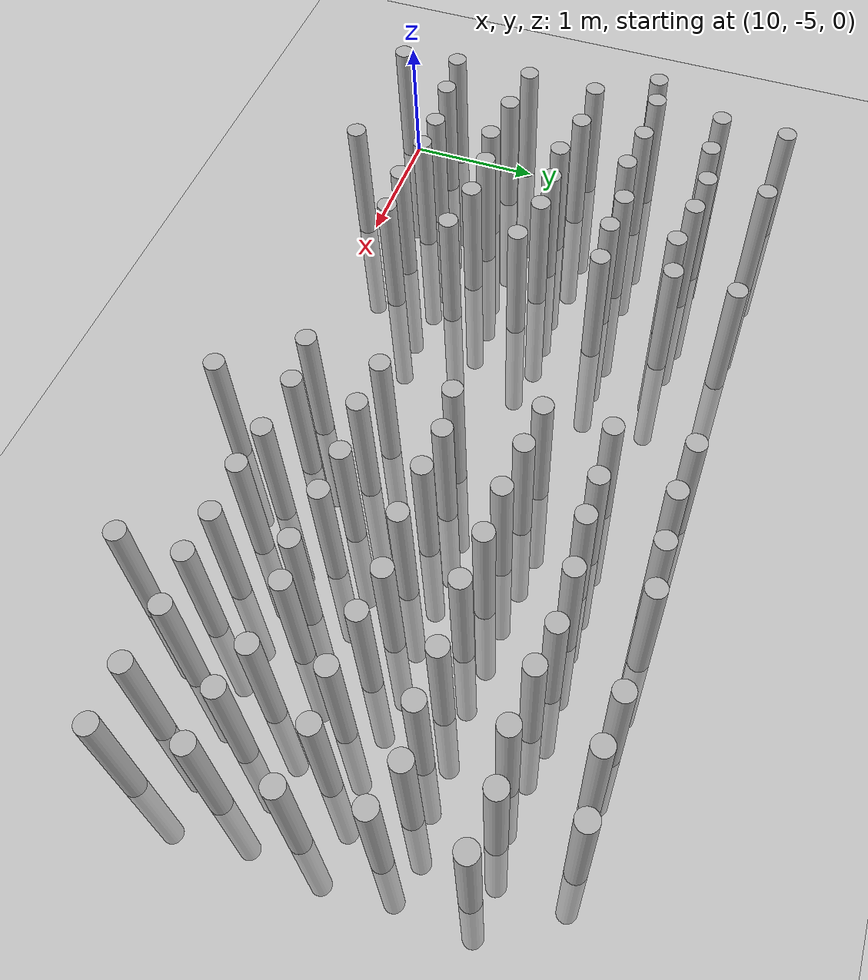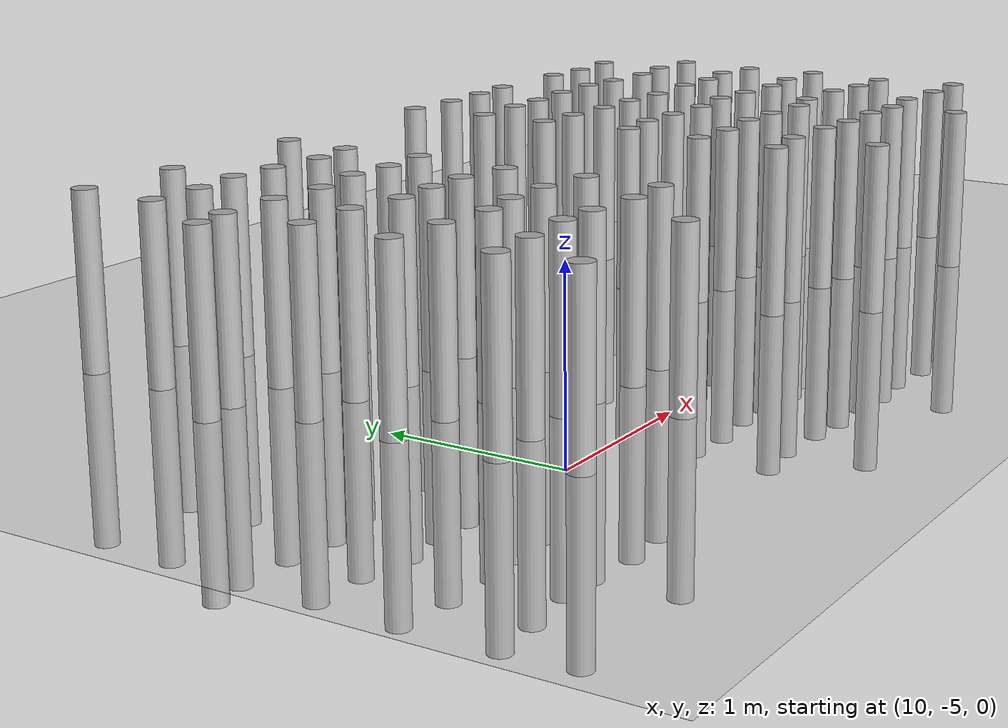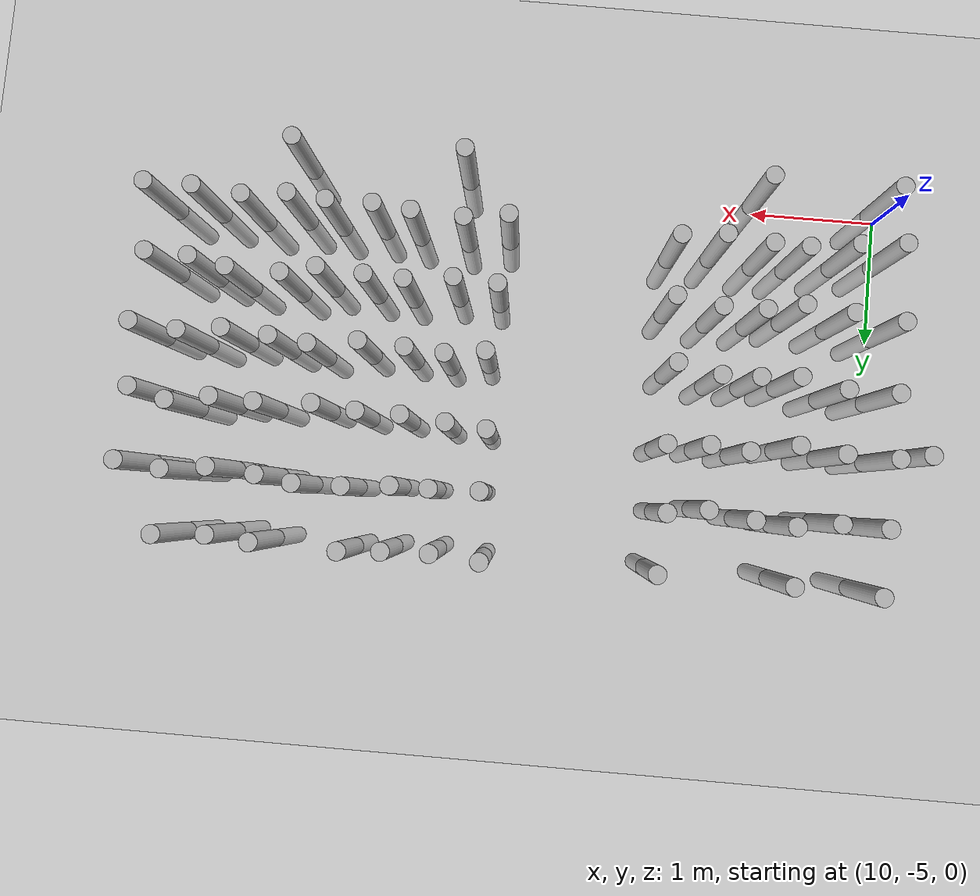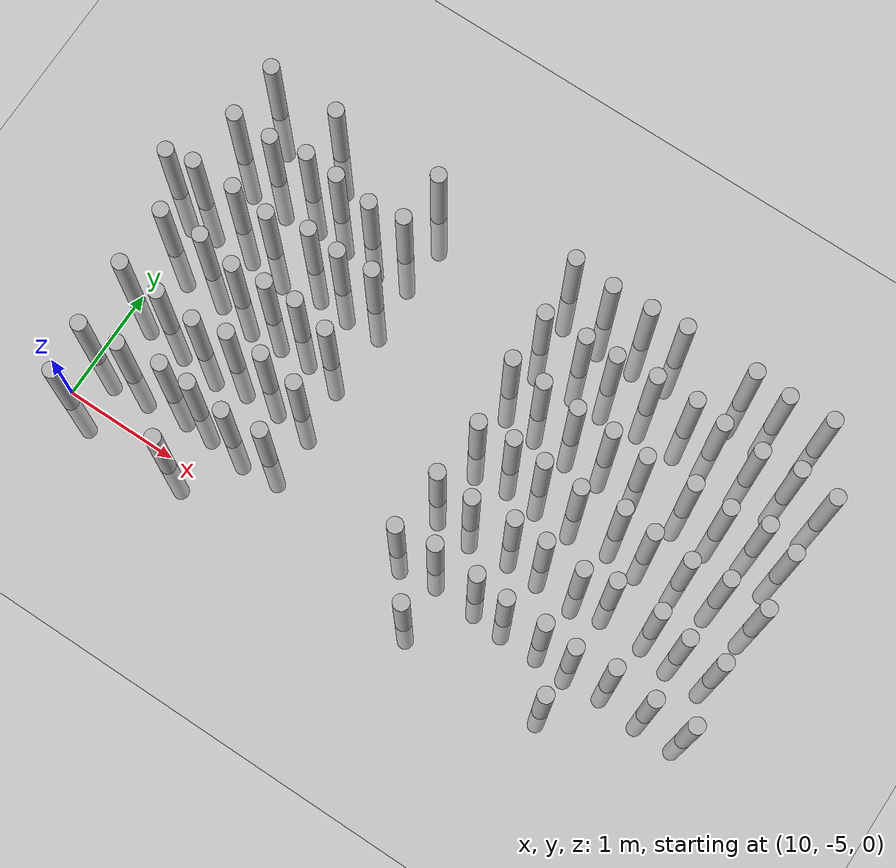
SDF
<sdf version="1.7">
 <world name="farmland_world">
  <model name="ground_plane">
   <static>1</static>
   <link name="link">
    <collision name="collision">
     <geometry><plane><normal>0 0 1</normal><size>40.0 40.0</size></plane></geometry>
     <surface><friction><ode><mu>100</mu><mu2>50</mu2></ode></friction></surface>
    </collision>
    <visual name="visual">
     <cast_shadows>0</cast_shadows>
     <geometry><plane><normal>0 0 1</normal><size>40.0 40.0</size></plane></geometry>
     <material>
      <script><uri>file://media/materials/scripts/gazebo.material</uri><name>Gazebo/Grey</name></script>
     </material>
    </visual>
   </link>
  </model>
  <model name="tree_3_422">
   <static>1</static>
   <link name="link">
    <collision name="collision">
     <geometry><cylinder><radius>0.07</radius><length>2.0</length></cylinder></geometry>
     <surface><friction><ode><mu>100</mu><mu2>50</mu2></ode></friction></surface>
    </collision>
    <visual name="visual">
     <geometry><cylinder><radius>0.07</radius><length>2.0</length></cylinder></geometry>
    </visual>
   </link>
   <pose>9.717080359137375 -3.070453854320626 0 0 0 0</pose>
  </model>
  <model name="tree_3_450">
   <static>1</static>
   <link name="link">
    <collision name="collision">
     <geometry><cylinder><radius>0.07</radius><length>2.0</length></cylinder></geometry>
     <surface><friction><ode><mu>100</mu><mu2>50</mu2></ode></friction></surface>
    </collision>
    <visual name="visual">
     <geometry><cylinder><radius>0.07</radius><length>2.0</length></cylinder></geometry>
    </visual>
   </link>
   <pose>10.020881235300523 -2.015440573190769 0 0 0 0</pose>
  </model>
  <model name="tree_3_451">
   <static>1</static>
   <link name="link">
    <collision name="collision">
     <geometry><cylinder><radius>0.07</radius><length>2.0</length></cylinder></geometry>
     <surface><friction><ode><mu>100</mu><mu2>50</mu2></ode></friction></surface>
    </collision>
    <visual name="visual">
     <geometry><cylinder><radius>0.07</radius><length>2.0</length></cylinder></geometry>
    </visual>
   </link>
   <pose>9.998273174831413 -2.5115021983478996 0 0 0 0</pose>
  </model>
  <model name="tree_3_452">
   <static>1</static>
   <link name="link">
    <collision name="collision">
     <geometry><cylinder><radius>0.07</radius><length>2.0</length></cylinder></geometry>
     <surface><friction><ode><mu>100</mu><mu2>50</mu2></ode></friction></surface>
    </collision>
    <visual name="visual">
     <geometry><cylinder><radius>0.07</radius><length>2.0</length></cylinder></geometry>
    </visual>
   </link>
   <pose>9.95454674915316 -3.0256129459538177 0 0 0 0</pose>
  </model>
  <model name="tree_3_453">
   <static>1</static>
   <link name="link">
    <collision name="collision">
     <geometry><cylinder><radius>0.07</radius><length>2.0</length></cylinder></geometry>
     <surface><friction><ode><mu>100</mu><mu2>50</mu2></ode></friction></surface>
    </collision>
    <visual name="visual">
     <geometry><cylinder><radius>0.07</radius><length>2.0</length></cylinder></geometry>
    </visual>
   </link>
   <pose>9.978727187777547 -3.5089042168459845 0 0 0 0</pose>
  </model>
  <model name="tree_3_454">
   <static>1</static>
   <link name="link">
    <collision name="collision">
     <geometry><cylinder><radius>0.07</radius><length>2.0</length></cylinder></geometry>
     <surface><friction><ode><mu>100</mu><mu2>50</mu2></ode></friction></surface>
    </collision>
    <visual name="visual">
     <geometry><cylinder><radius>0.07</radius><length>2.0</length></cylinder></geometry>
    </visual>
   </link>
   <pose>9.962861763254484 -4.044706008967935 0 0 0 0</pose>
  </model>
  <model name="tree_3_455">
   <static>1</static>
   <link name="link">
    <collision name="collision">
     <geometry><cylinder><radius>0.07</radius><length>2.0</length></cylinder></geometry>
     <surface><friction><ode><mu>100</mu><mu2>50</mu2></ode></friction></surface>
    </collision>
    <visual name="visual">
     <geometry><cylinder><radius>0.07</radius><length>2.0</length></cylinder></geometry>
    </visual>
   </link>
   <pose>9.98573213306673 -4.633881125845042 0 0 0 0</pose>
  </model>
  <model name="tree_3_456">
   <static>1</static>
   <link name="link">
    <collision name="collision">
     <geometry><cylinder><radius>0.07</radius><length>2.0</length></cylinder></geometry>
     <surface><friction><ode><mu>100</mu><mu2>50</mu2></ode></friction></surface>
    </collision>
    <visual name="visual">
     <geometry><cylinder><radius>0.07</radius><length>2.0</length></cylinder></geometry>
    </visual>
   </link>
   <pose>10.029628580053213 -5.064842120949459 0 0 0 0</pose>
  </model>
  <model name="tree_3_481">
   <static>1</static>
   <link name="link">
    <collision name="collision">
     <geometry><cylinder><radius>0.07</radius><length>2.0</length></cylinder></geometry>
     <surface><friction><ode><mu>100</mu><mu2>50</mu2></ode></friction></surface>
    </collision>
    <visual name="visual">
     <geometry><cylinder><radius>0.07</radius><length>2.0</length></cylinder></geometry>
    </visual>
   </link>
   <pose>10.349892017524366 -2.5162948231861995 0 0 0 0</pose>
  </model>
  <model name="tree_3_482">
   <static>1</static>
   <link name="link">
    <collision name="collision">
     <geometry><cylinder><radius>0.07</radius><length>2.0</length></cylinder></geometry>
     <surface><friction><ode><mu>100</mu><mu2>50</mu2></ode></friction></surface>
    </collision>
    <visual name="visual">
     <geometry><cylinder><radius>0.07</radius><length>2.0</length></cylinder></geometry>
    </visual>
   </link>
   <pose>10.343660362567944 -3.0278049491643686 0 0 0 0</pose>
  </model>
  <model name="tree_3_483">
   <static>1</static>
   <link name="link">
    <collision name="collision">
     <geometry><cylinder><radius>0.07</radius><length>2.0</length></cylinder></geometry>
     <surface><friction><ode><mu>100</mu><mu2>50</mu2></ode></friction></surface>
    </collision>
    <visual name="visual">
     <geometry><cylinder><radius>0.07</radius><length>2.0</length></cylinder></geometry>
    </visual>
   </link>
   <pose>10.361353791829298 -3.5052584122187636 0 0 0 0</pose>
  </model>
  <model name="tree_3_484">
   <static>1</static>
   <link name="link">
    <collision name="collision">
     <geometry><cylinder><radius>0.07</radius><length>2.0</length></cylinder></geometry>
     <surface><friction><ode><mu>100</mu><mu2>50</mu2></ode></friction></surface>
    </collision>
    <visual name="visual">
     <geometry><cylinder><radius>0.07</radius><length>2.0</length></cylinder></geometry>
    </visual>
   </link>
   <pose>10.340791550689085 -4.080622288337927 0 0 0 0</pose>
  </model>
  <model name="tree_3_485">
   <static>1</static>
   <link name="link">
    <collision name="collision">
     <geometry><cylinder><radius>0.07</radius><length>2.0</length></cylinder></geometry>
     <surface><friction><ode><mu>100</mu><mu2>50</mu2></ode></friction></surface>
    </collision>
    <visual name="visual">
     <geometry><cylinder><radius>0.07</radius><length>2.0</length></cylinder></geometry>
    </visual>
   </link>
   <pose>10.325672254703452 -4.5988533850934905 0 0 0 0</pose>
  </model>
  <model name="tree_3_510">
   <static>1</static>
   <link name="link">
    <collision name="collision">
     <geometry><cylinder><radius>0.07</radius><length>2.0</length></cylinder></geometry>
     <surface><friction><ode><mu>100</mu><mu2>50</mu2></ode></friction></surface>
    </collision>
    <visual name="visual">
     <geometry><cylinder><radius>0.07</radius><length>2.0</length></cylinder></geometry>
    </visual>
   </link>
   <pose>10.66874375848975 -2.0363046960579263 0 0 0 0</pose>
  </model>
  <model name="tree_3_511">
   <static>1</static>
   <link name="link">
    <collision name="collision">
     <geometry><cylinder><radius>0.07</radius><length>2.0</length></cylinder></geometry>
     <surface><friction><ode><mu>100</mu><mu2>50</mu2></ode></friction></surface>
    </collision>
    <visual name="visual">
     <geometry><cylinder><radius>0.07</radius><length>2.0</length></cylinder></geometry>
    </visual>
   </link>
   <pose>10.674654643913126 -2.469515326749987 0 0 0 0</pose>
  </model>
  <model name="tree_3_512">
   <static>1</static>
   <link name="link">
    <collision name="collision">
     <geometry><cylinder><radius>0.07</radius><length>2.0</length></cylinder></geometry>
     <surface><friction><ode><mu>100</mu><mu2>50</mu2></ode></friction></surface>
    </collision>
    <visual name="visual">
     <geometry><cylinder><radius>0.07</radius><length>2.0</length></cylinder></geometry>
    </visual>
   </link>
   <pose>10.68927461000479 -3.062622080248594 0 0 0 0</pose>
  </model>
  <model name="tree_3_513">
   <static>1</static>
   <link name="link">
    <collision name="collision">
     <geometry><cylinder><radius>0.07</radius><length>2.0</length></cylinder></geometry>
     <surface><friction><ode><mu>100</mu><mu2>50</mu2></ode></friction></surface>
    </collision>
    <visual name="visual">
     <geometry><cylinder><radius>0.07</radius><length>2.0</length></cylinder></geometry>
    </visual>
   </link>
   <pose>10.709726104242007 -3.5698760653888435 0 0 0 0</pose>
  </model>
  <model name="tree_3_514">
   <static>1</static>
   <link name="link">
    <collision name="collision">
     <geometry><cylinder><radius>0.07</radius><length>2.0</length></cylinder></geometry>
     <surface><friction><ode><mu>100</mu><mu2>50</mu2></ode></friction></surface>
    </collision>
    <visual name="visual">
     <geometry><cylinder><radius>0.07</radius><length>2.0</length></cylinder></geometry>
    </visual>
   </link>
   <pose>10.70632579538246 -4.111328735424262 0 0 0 0</pose>
  </model>
  <model name="tree_3_515">
   <static>1</static>
   <link name="link">
    <collision name="collision">
     <geometry><cylinder><radius>0.07</radius><length>2.0</length></cylinder></geometry>
     <surface><friction><ode><mu>100</mu><mu2>50</mu2></ode></friction></surface>
    </collision>
    <visual name="visual">
     <geometry><cylinder><radius>0.07</radius><length>2.0</length></cylinder></geometry>
    </visual>
   </link>
   <pose>10.704409641406844 -4.548946442942845 0 0 0 0</pose>
  </model>
  <model name="tree_3_541">
   <static>1</static>
   <link name="link">
    <collision name="collision">
     <geometry><cylinder><radius>0.07</radius><length>2.0</length></cylinder></geometry>
     <surface><friction><ode><mu>100</mu><mu2>50</mu2></ode></friction></surface>
    </collision>
    <visual name="visual">
     <geometry><cylinder><radius>0.07</radius><length>2.0</length></cylinder></geometry>
    </visual>
   </link>
   <pose>10.979737095840775 -2.491281266314738 0 0 0 0</pose>
  </model>
  <model name="tree_3_542">
   <static>1</static>
   <link name="link">
    <collision name="collision">
     <geometry><cylinder><radius>0.07</radius><length>2.0</length></cylinder></geometry>
     <surface><friction><ode><mu>100</mu><mu2>50</mu2></ode></friction></surface>
    </collision>
    <visual name="visual">
     <geometry><cylinder><radius>0.07</radius><length>2.0</length></cylinder></geometry>
    </visual>
   </link>
   <pose>11.049780969930945 -2.9894349585426356 0 0 0 0</pose>
  </model>
  <model name="tree_3_543">
   <static>1</static>
   <link name="link">
    <collision name="collision">
     <geometry><cylinder><radius>0.07</radius><length>2.0</length></cylinder></geometry>
     <surface><friction><ode><mu>100</mu><mu2>50</mu2></ode></friction></surface>
    </collision>
    <visual name="visual">
     <geometry><cylinder><radius>0.07</radius><length>2.0</length></cylinder></geometry>
    </visual>
   </link>
   <pose>11.007866608676519 -3.543886954436348 0 0 0 0</pose>
  </model>
  <model name="tree_3_544">
   <static>1</static>
   <link name="link">
    <collision name="collision">
     <geometry><cylinder><radius>0.07</radius><length>2.0</length></cylinder></geometry>
     <surface><friction><ode><mu>100</mu><mu2>50</mu2></ode></friction></surface>
    </collision>
    <visual name="visual">
     <geometry><cylinder><radius>0.07</radius><length>2.0</length></cylinder></geometry>
    </visual>
   </link>
   <pose>10.993957659124032 -4.051926600593174 0 0 0 0</pose>
  </model>
  <model name="tree_3_545">
   <static>1</static>
   <link name="link">
    <collision name="collision">
     <geometry><cylinder><radius>0.07</radius><length>2.0</length></cylinder></geometry>
     <surface><friction><ode><mu>100</mu><mu2>50</mu2></ode></friction></surface>
    </collision>
    <visual name="visual">
     <geometry><cylinder><radius>0.07</radius><length>2.0</length></cylinder></geometry>
    </visual>
   </link>
   <pose>10.973415012357032 -4.555407726337556 0 0 0 0</pose>
  </model>
  <model name="tree_3_546">
   <static>1</static>
   <link name="link">
    <collision name="collision">
     <geometry><cylinder><radius>0.07</radius><length>2.0</length></cylinder></geometry>
     <surface><friction><ode><mu>100</mu><mu2>50</mu2></ode></friction></surface>
    </collision>
    <visual name="visual">
     <geometry><cylinder><radius>0.07</radius><length>2.0</length></cylinder></geometry>
    </visual>
   </link>
   <pose>11.007671961605217 -5.06622406489025 0 0 0 0</pose>
  </model>
  <model name="tree_3_571">
   <static>1</static>
   <link name="link">
    <collision name="collision">
     <geometry><cylinder><radius>0.07</radius><length>2.0</length></cylinder></geometry>
     <surface><friction><ode><mu>100</mu><mu2>50</mu2></ode></friction></surface>
    </collision>
    <visual name="visual">
     <geometry><cylinder><radius>0.07</radius><length>2.0</length></cylinder></geometry>
    </visual>
   </link>
   <pose>11.324796643864374 -2.537446021737154 0 0 0 0</pose>
  </model>
  <model name="tree_3_572">
   <static>1</static>
   <link name="link">
    <collision name="collision">
     <geometry><cylinder><radius>0.07</radius><length>2.0</length></cylinder></geometry>
     <surface><friction><ode><mu>100</mu><mu2>50</mu2></ode></friction></surface>
    </collision>
    <visual name="visual">
     <geometry><cylinder><radius>0.07</radius><length>2.0</length></cylinder></geometry>
    </visual>
   </link>
   <pose>11.343550527425926 -3.013005061129465 0 0 0 0</pose>
  </model>
  <model name="tree_3_573">
   <static>1</static>
   <link name="link">
    <collision name="collision">
     <geometry><cylinder><radius>0.07</radius><length>2.0</length></cylinder></geometry>
     <surface><friction><ode><mu>100</mu><mu2>50</mu2></ode></friction></surface>
    </collision>
    <visual name="visual">
     <geometry><cylinder><radius>0.07</radius><length>2.0</length></cylinder></geometry>
    </visual>
   </link>
   <pose>11.295116834653838 -3.535126341004741 0 0 0 0</pose>
  </model>
  <model name="tree_3_574">
   <static>1</static>
   <link name="link">
    <collision name="collision">
     <geometry><cylinder><radius>0.07</radius><length>2.0</length></cylinder></geometry>
     <surface><friction><ode><mu>100</mu><mu2>50</mu2></ode></friction></surface>
    </collision>
    <visual name="visual">
     <geometry><cylinder><radius>0.07</radius><length>2.0</length></cylinder></geometry>
    </visual>
   </link>
   <pose>11.32085412783135 -4.0472351998851375 0 0 0 0</pose>
  </model>
  <model name="tree_3_575">
   <static>1</static>
   <link name="link">
    <collision name="collision">
     <geometry><cylinder><radius>0.07</radius><length>2.0</length></cylinder></geometry>
     <surface><friction><ode><mu>100</mu><mu2>50</mu2></ode></friction></surface>
    </collision>
    <visual name="visual">
     <geometry><cylinder><radius>0.07</radius><length>2.0</length></cylinder></geometry>
    </visual>
   </link>
   <pose>11.326289432675699 -4.5937818026488575 0 0 0 0</pose>
  </model>
  <model name="tree_3_600">
   <static>1</static>
   <link name="link">
    <collision name="collision">
     <geometry><cylinder><radius>0.07</radius><length>2.0</length></cylinder></geometry>
     <surface><friction><ode><mu>100</mu><mu2>50</mu2></ode></friction></surface>
    </collision>
    <visual name="visual">
     <geometry><cylinder><radius>0.07</radius><length>2.0</length></cylinder></geometry>
    </visual>
   </link>
   <pose>11.664897325765985 -2.0405155615173833 0 0 0 0</pose>
  </model>
  <model name="tree_3_601">
   <static>1</static>
   <link name="link">
    <collision name="collision">
     <geometry><cylinder><radius>0.07</radius><length>2.0</length></cylinder></geometry>
     <surface><friction><ode><mu>100</mu><mu2>50</mu2></ode></friction></surface>
    </collision>
    <visual name="visual">
     <geometry><cylinder><radius>0.07</radius><length>2.0</length></cylinder></geometry>
    </visual>
   </link>
   <pose>11.627634994784051 -2.489922066019672 0 0 0 0</pose>
  </model>
  <model name="tree_3_602">
   <static>1</static>
   <link name="link">
    <collision name="collision">
     <geometry><cylinder><radius>0.07</radius><length>2.0</length></cylinder></geometry>
     <surface><friction><ode><mu>100</mu><mu2>50</mu2></ode></friction></surface>
    </collision>
    <visual name="visual">
     <geometry><cylinder><radius>0.07</radius><length>2.0</length></cylinder></geometry>
    </visual>
   </link>
   <pose>11.66218667401628 -2.992871850044101 0 0 0 0</pose>
  </model>
  <model name="tree_3_603">
   <static>1</static>
   <link name="link">
    <collision name="collision">
     <geometry><cylinder><radius>0.07</radius><length>2.0</length></cylinder></geometry>
     <surface><friction><ode><mu>100</mu><mu2>50</mu2></ode></friction></surface>
    </collision>
    <visual name="visual">
     <geometry><cylinder><radius>0.07</radius><length>2.0</length></cylinder></geometry>
    </visual>
   </link>
   <pose>11.626772930223812 -3.5998928023856553 0 0 0 0</pose>
  </model>
  <model name="tree_3_604">
   <static>1</static>
   <link name="link">
    <collision name="collision">
     <geometry><cylinder><radius>0.07</radius><length>2.0</length></cylinder></geometry>
     <surface><friction><ode><mu>100</mu><mu2>50</mu2></ode></friction></surface>
    </collision>
    <visual name="visual">
     <geometry><cylinder><radius>0.07</radius><length>2.0</length></cylinder></geometry>
    </visual>
   </link>
   <pose>11.66985236156707 -4.09705594616118 0 0 0 0</pose>
  </model>
  <model name="tree_3_605">
   <static>1</static>
   <link name="link">
    <collision name="collision">
     <geometry><cylinder><radius>0.07</radius><length>2.0</length></cylinder></geometry>
     <surface><friction><ode><mu>100</mu><mu2>50</mu2></ode></friction></surface>
    </collision>
    <visual name="visual">
     <geometry><cylinder><radius>0.07</radius><length>2.0</length></cylinder></geometry>
    </visual>
   </link>
   <pose>11.666140430878173 -4.559905708303134 0 0 0 0</pose>
  </model>
  <model name="tree_3_630">
   <static>1</static>
   <link name="link">
    <collision name="collision">
     <geometry><cylinder><radius>0.07</radius><length>2.0</length></cylinder></geometry>
     <surface><friction><ode><mu>100</mu><mu2>50</mu2></ode></friction></surface>
    </collision>
    <visual name="visual">
     <geometry><cylinder><radius>0.07</radius><length>2.0</length></cylinder></geometry>
    </visual>
   </link>
   <pose>12.960612645370297 -2.020001596869969 0 0 0 0</pose>
  </model>
  <model name="tree_3_631">
   <static>1</static>
   <link name="link">
    <collision name="collision">
     <geometry><cylinder><radius>0.07</radius><length>2.0</length></cylinder></geometry>
     <surface><friction><ode><mu>100</mu><mu2>50</mu2></ode></friction></surface>
    </collision>
    <visual name="visual">
     <geometry><cylinder><radius>0.07</radius><length>2.0</length></cylinder></geometry>
    </visual>
   </link>
   <pose>13.003158117616708 -2.531564269439165 0 0 0 0</pose>
  </model>
  <model name="tree_3_632">
   <static>1</static>
   <link name="link">
    <collision name="collision">
     <geometry><cylinder><radius>0.07</radius><length>2.0</length></cylinder></geometry>
     <surface><friction><ode><mu>100</mu><mu2>50</mu2></ode></friction></surface>
    </collision>
    <visual name="visual">
     <geometry><cylinder><radius>0.07</radius><length>2.0</length></cylinder></geometry>
    </visual>
   </link>
   <pose>12.993375641554099 -2.9873528097823154 0 0 0 0</pose>
  </model>
  <model name="tree_3_633">
   <static>1</static>
   <link name="link">
    <collision name="collision">
     <geometry><cylinder><radius>0.07</radius><length>2.0</length></cylinder></geometry>
     <surface><friction><ode><mu>100</mu><mu2>50</mu2></ode></friction></surface>
    </collision>
    <visual name="visual">
     <geometry><cylinder><radius>0.07</radius><length>2.0</length></cylinder></geometry>
    </visual>
   </link>
   <pose>13.049970485003149 -3.564685814902997 0 0 0 0</pose>
  </model>
  <model name="tree_3_634">
   <static>1</static>
   <link name="link">
    <collision name="collision">
     <geometry><cylinder><radius>0.07</radius><length>2.0</length></cylinder></geometry>
     <surface><friction><ode><mu>100</mu><mu2>50</mu2></ode></friction></surface>
    </collision>
    <visual name="visual">
     <geometry><cylinder><radius>0.07</radius><length>2.0</length></cylinder></geometry>
    </visual>
   </link>
   <pose>13.004393510239103 -4.075042588408984 0 0 0 0</pose>
  </model>
  <model name="tree_3_635">
   <static>1</static>
   <link name="link">
    <collision name="collision">
     <geometry><cylinder><radius>0.07</radius><length>2.0</length></cylinder></geometry>
     <surface><friction><ode><mu>100</mu><mu2>50</mu2></ode></friction></surface>
    </collision>
    <visual name="visual">
     <geometry><cylinder><radius>0.07</radius><length>2.0</length></cylinder></geometry>
    </visual>
   </link>
   <pose>12.965542090179241 -4.604766656195209 0 0 0 0</pose>
  </model>
  <model name="tree_3_660">
   <static>1</static>
   <link name="link">
    <collision name="collision">
     <geometry><cylinder><radius>0.07</radius><length>2.0</length></cylinder></geometry>
     <surface><friction><ode><mu>100</mu><mu2>50</mu2></ode></friction></surface>
    </collision>
    <visual name="visual">
     <geometry><cylinder><radius>0.07</radius><length>2.0</length></cylinder></geometry>
    </visual>
   </link>
   <pose>13.328774511057324 -2.0490253503559073 0 0 0 0</pose>
  </model>
  <model name="tree_3_661">
   <static>1</static>
   <link name="link">
    <collision name="collision">
     <geometry><cylinder><radius>0.07</radius><length>2.0</length></cylinder></geometry>
     <surface><friction><ode><mu>100</mu><mu2>50</mu2></ode></friction></surface>
    </collision>
    <visual name="visual">
     <geometry><cylinder><radius>0.07</radius><length>2.0</length></cylinder></geometry>
    </visual>
   </link>
   <pose>13.377119618618828 -2.5177155727598244 0 0 0 0</pose>
  </model>
  <model name="tree_3_662">
   <static>1</static>
   <link name="link">
    <collision name="collision">
     <geometry><cylinder><radius>0.07</radius><length>2.0</length></cylinder></geometry>
     <surface><friction><ode><mu>100</mu><mu2>50</mu2></ode></friction></surface>
    </collision>
    <visual name="visual">
     <geometry><cylinder><radius>0.07</radius><length>2.0</length></cylinder></geometry>
    </visual>
   </link>
   <pose>13.298872429895432 -3.0127574798873216 0 0 0 0</pose>
  </model>
  <model name="tree_3_663">
   <static>1</static>
   <link name="link">
    <collision name="collision">
     <geometry><cylinder><radius>0.07</radius><length>2.0</length></cylinder></geometry>
     <surface><friction><ode><mu>100</mu><mu2>50</mu2></ode></friction></surface>
    </collision>
    <visual name="visual">
     <geometry><cylinder><radius>0.07</radius><length>2.0</length></cylinder></geometry>
    </visual>
   </link>
   <pose>13.353031816937946 -3.5222221432086576 0 0 0 0</pose>
  </model>
  <model name="tree_3_664">
   <static>1</static>
   <link name="link">
    <collision name="collision">
     <geometry><cylinder><radius>0.07</radius><length>2.0</length></cylinder></geometry>
     <surface><friction><ode><mu>100</mu><mu2>50</mu2></ode></friction></surface>
    </collision>
    <visual name="visual">
     <geometry><cylinder><radius>0.07</radius><length>2.0</length></cylinder></geometry>
    </visual>
   </link>
   <pose>13.337465787345485 -4.0937416873712795 0 0 0 0</pose>
  </model>
  <model name="tree_3_665">
   <static>1</static>
   <link name="link">
    <collision name="collision">
     <geometry><cylinder><radius>0.07</radius><length>2.0</length></cylinder></geometry>
     <surface><friction><ode><mu>100</mu><mu2>50</mu2></ode></friction></surface>
    </collision>
    <visual name="visual">
     <geometry><cylinder><radius>0.07</radius><length>2.0</length></cylinder></geometry>
    </visual>
   </link>
   <pose>13.302349958882031 -4.554737615776283 0 0 0 0</pose>
  </model>
  <model name="tree_3_666">
   <static>1</static>
   <link name="link">
    <collision name="collision">
     <geometry><cylinder><radius>0.07</radius><length>2.0</length></cylinder></geometry>
     <surface><friction><ode><mu>100</mu><mu2>50</mu2></ode></friction></surface>
    </collision>
    <visual name="visual">
     <geometry><cylinder><radius>0.07</radius><length>2.0</length></cylinder></geometry>
    </visual>
   </link>
   <pose>13.33841103429083 -5.07794579671225 0 0 0 0</pose>
  </model>
  <model name="tree_3_690">
   <static>1</static>
   <link name="link">
    <collision name="collision">
     <geometry><cylinder><radius>0.07</radius><length>2.0</length></cylinder></geometry>
     <surface><friction><ode><mu>100</mu><mu2>50</mu2></ode></friction></surface>
    </collision>
    <visual name="visual">
     <geometry><cylinder><radius>0.07</radius><length>2.0</length></cylinder></geometry>
    </visual>
   </link>
   <pose>13.681525599248896 -2.0346011697346684 0 0 0 0</pose>
  </model>
  <model name="tree_3_691">
   <static>1</static>
   <link name="link">
    <collision name="collision">
     <geometry><cylinder><radius>0.07</radius><length>2.0</length></cylinder></geometry>
     <surface><friction><ode><mu>100</mu><mu2>50</mu2></ode></friction></surface>
    </collision>
    <visual name="visual">
     <geometry><cylinder><radius>0.07</radius><length>2.0</length></cylinder></geometry>
    </visual>
   </link>
   <pose>13.661327469516268 -2.515464992140587 0 0 0 0</pose>
  </model>
  <model name="tree_3_692">
   <static>1</static>
   <link name="link">
    <collision name="collision">
     <geometry><cylinder><radius>0.07</radius><length>2.0</length></cylinder></geometry>
     <surface><friction><ode><mu>100</mu><mu2>50</mu2></ode></friction></surface>
    </collision>
    <visual name="visual">
     <geometry><cylinder><radius>0.07</radius><length>2.0</length></cylinder></geometry>
    </visual>
   </link>
   <pose>13.634424833269183 -3.0413740655983394 0 0 0 0</pose>
  </model>
  <model name="tree_3_693">
   <static>1</static>
   <link name="link">
    <collision name="collision">
     <geometry><cylinder><radius>0.07</radius><length>2.0</length></cylinder></geometry>
     <surface><friction><ode><mu>100</mu><mu2>50</mu2></ode></friction></surface>
    </collision>
    <visual name="visual">
     <geometry><cylinder><radius>0.07</radius><length>2.0</length></cylinder></geometry>
    </visual>
   </link>
   <pose>13.650762402313813 -3.54275371511737 0 0 0 0</pose>
  </model>
  <model name="tree_3_694">
   <static>1</static>
   <link name="link">
    <collision name="collision">
     <geometry><cylinder><radius>0.07</radius><length>2.0</length></cylinder></geometry>
     <surface><friction><ode><mu>100</mu><mu2>50</mu2></ode></friction></surface>
    </collision>
    <visual name="visual">
     <geometry><cylinder><radius>0.07</radius><length>2.0</length></cylinder></geometry>
    </visual>
   </link>
   <pose>13.706018645843812 -4.0508481155113545 0 0 0 0</pose>
  </model>
  <model name="tree_3_695">
   <static>1</static>
   <link name="link">
    <collision name="collision">
     <geometry><cylinder><radius>0.07</radius><length>2.0</length></cylinder></geometry>
     <surface><friction><ode><mu>100</mu><mu2>50</mu2></ode></friction></surface>
    </collision>
    <visual name="visual">
     <geometry><cylinder><radius>0.07</radius><length>2.0</length></cylinder></geometry>
    </visual>
   </link>
   <pose>13.701158590837842 -4.573846500243436 0 0 0 0</pose>
  </model>
  <model name="tree_3_720">
   <static>1</static>
   <link name="link">
    <collision name="collision">
     <geometry><cylinder><radius>0.07</radius><length>2.0</length></cylinder></geometry>
     <surface><friction><ode><mu>100</mu><mu2>50</mu2></ode></friction></surface>
    </collision>
    <visual name="visual">
     <geometry><cylinder><radius>0.07</radius><length>2.0</length></cylinder></geometry>
    </visual>
   </link>
   <pose>13.997588758998843 -2.0099890282519657 0 0 0 0</pose>
  </model>
  <model name="tree_3_721">
   <static>1</static>
   <link name="link">
    <collision name="collision">
     <geometry><cylinder><radius>0.07</radius><length>2.0</length></cylinder></geometry>
     <surface><friction><ode><mu>100</mu><mu2>50</mu2></ode></friction></surface>
    </collision>
    <visual name="visual">
     <geometry><cylinder><radius>0.07</radius><length>2.0</length></cylinder></geometry>
    </visual>
   </link>
   <pose>14.015086598085556 -2.4824299507257583 0 0 0 0</pose>
  </model>
  <model name="tree_3_722">
   <static>1</static>
   <link name="link">
    <collision name="collision">
     <geometry><cylinder><radius>0.07</radius><length>2.0</length></cylinder></geometry>
     <surface><friction><ode><mu>100</mu><mu2>50</mu2></ode></friction></surface>
    </collision>
    <visual name="visual">
     <geometry><cylinder><radius>0.07</radius><length>2.0</length></cylinder></geometry>
    </visual>
   </link>
   <pose>13.96463271150886 -3.0421146747684316 0 0 0 0</pose>
  </model>
  <model name="tree_3_723">
   <static>1</static>
   <link name="link">
    <collision name="collision">
     <geometry><cylinder><radius>0.07</radius><length>2.0</length></cylinder></geometry>
     <surface><friction><ode><mu>100</mu><mu2>50</mu2></ode></friction></surface>
    </collision>
    <visual name="visual">
     <geometry><cylinder><radius>0.07</radius><length>2.0</length></cylinder></geometry>
    </visual>
   </link>
   <pose>13.998221983812822 -3.560359693441759 0 0 0 0</pose>
  </model>
  <model name="tree_3_724">
   <static>1</static>
   <link name="link">
    <collision name="collision">
     <geometry><cylinder><radius>0.07</radius><length>2.0</length></cylinder></geometry>
     <surface><friction><ode><mu>100</mu><mu2>50</mu2></ode></friction></surface>
    </collision>
    <visual name="visual">
     <geometry><cylinder><radius>0.07</radius><length>2.0</length></cylinder></geometry>
    </visual>
   </link>
   <pose>14.004856675073153 -4.061975625905278 0 0 0 0</pose>
  </model>
  <model name="tree_3_725">
   <static>1</static>
   <link name="link">
    <collision name="collision">
     <geometry><cylinder><radius>0.07</radius><length>2.0</length></cylinder></geometry>
     <surface><friction><ode><mu>100</mu><mu2>50</mu2></ode></friction></surface>
    </collision>
    <visual name="visual">
     <geometry><cylinder><radius>0.07</radius><length>2.0</length></cylinder></geometry>
    </visual>
   </link>
   <pose>13.991331234323113 -4.602526824317719 0 0 0 0</pose>
  </model>
  <model name="tree_3_751">
   <static>1</static>
   <link name="link">
    <collision name="collision">
     <geometry><cylinder><radius>0.07</radius><length>2.0</length></cylinder></geometry>
     <surface><friction><ode><mu>100</mu><mu2>50</mu2></ode></friction></surface>
    </collision>
    <visual name="visual">
     <geometry><cylinder><radius>0.07</radius><length>2.0</length></cylinder></geometry>
    </visual>
   </link>
   <pose>14.376362825787275 -2.4738478521506 0 0 0 0</pose>
  </model>
  <model name="tree_3_752">
   <static>1</static>
   <link name="link">
    <collision name="collision">
     <geometry><cylinder><radius>0.07</radius><length>2.0</length></cylinder></geometry>
     <surface><friction><ode><mu>100</mu><mu2>50</mu2></ode></friction></surface>
    </collision>
    <visual name="visual">
     <geometry><cylinder><radius>0.07</radius><length>2.0</length></cylinder></geometry>
    </visual>
   </link>
   <pose>14.292933865230093 -3.0701009728787803 0 0 0 0</pose>
  </model>
  <model name="tree_3_753">
   <static>1</static>
   <link name="link">
    <collision name="collision">
     <geometry><cylinder><radius>0.07</radius><length>2.0</length></cylinder></geometry>
     <surface><friction><ode><mu>100</mu><mu2>50</mu2></ode></friction></surface>
    </collision>
    <visual name="visual">
     <geometry><cylinder><radius>0.07</radius><length>2.0</length></cylinder></geometry>
    </visual>
   </link>
   <pose>14.369485396192102 -3.5094333142351357 0 0 0 0</pose>
  </model>
  <model name="tree_3_754">
   <static>1</static>
   <link name="link">
    <collision name="collision">
     <geometry><cylinder><radius>0.07</radius><length>2.0</length></cylinder></geometry>
     <surface><friction><ode><mu>100</mu><mu2>50</mu2></ode></friction></surface>
    </collision>
    <visual name="visual">
     <geometry><cylinder><radius>0.07</radius><length>2.0</length></cylinder></geometry>
    </visual>
   </link>
   <pose>14.361896903736822 -4.087582602094099 0 0 0 0</pose>
  </model>
  <model name="tree_3_755">
   <static>1</static>
   <link name="link">
    <collision name="collision">
     <geometry><cylinder><radius>0.07</radius><length>2.0</length></cylinder></geometry>
     <surface><friction><ode><mu>100</mu><mu2>50</mu2></ode></friction></surface>
    </collision>
    <visual name="visual">
     <geometry><cylinder><radius>0.07</radius><length>2.0</length></cylinder></geometry>
    </visual>
   </link>
   <pose>14.34417521644219 -4.600224027605203 0 0 0 0</pose>
  </model>
  <model name="tree_3_780">
   <static>1</static>
   <link name="link">
    <collision name="collision">
     <geometry><cylinder><radius>0.07</radius><length>2.0</length></cylinder></geometry>
     <surface><friction><ode><mu>100</mu><mu2>50</mu2></ode></friction></surface>
    </collision>
    <visual name="visual">
     <geometry><cylinder><radius>0.07</radius><length>2.0</length></cylinder></geometry>
    </visual>
   </link>
   <pose>14.642213721217741 -2.0203945692173257 0 0 0 0</pose>
  </model>
  <model name="tree_3_781">
   <static>1</static>
   <link name="link">
    <collision name="collision">
     <geometry><cylinder><radius>0.07</radius><length>2.0</length></cylinder></geometry>
     <surface><friction><ode><mu>100</mu><mu2>50</mu2></ode></friction></surface>
    </collision>
    <visual name="visual">
     <geometry><cylinder><radius>0.07</radius><length>2.0</length></cylinder></geometry>
    </visual>
   </link>
   <pose>14.652221355718224 -2.513761090108913 0 0 0 0</pose>
  </model>
  <model name="tree_3_782">
   <static>1</static>
   <link name="link">
    <collision name="collision">
     <geometry><cylinder><radius>0.07</radius><length>2.0</length></cylinder></geometry>
     <surface><friction><ode><mu>100</mu><mu2>50</mu2></ode></friction></surface>
    </collision>
    <visual name="visual">
     <geometry><cylinder><radius>0.07</radius><length>2.0</length></cylinder></geometry>
    </visual>
   </link>
   <pose>14.718913993416647 -3.0463848197503443 0 0 0 0</pose>
  </model>
  <model name="tree_3_783">
   <static>1</static>
   <link name="link">
    <collision name="collision">
     <geometry><cylinder><radius>0.07</radius><length>2.0</length></cylinder></geometry>
     <surface><friction><ode><mu>100</mu><mu2>50</mu2></ode></friction></surface>
    </collision>
    <visual name="visual">
     <geometry><cylinder><radius>0.07</radius><length>2.0</length></cylinder></geometry>
    </visual>
   </link>
   <pose>14.662493719094801 -3.544133079060347 0 0 0 0</pose>
  </model>
  <model name="tree_3_784">
   <static>1</static>
   <link name="link">
    <collision name="collision">
     <geometry><cylinder><radius>0.07</radius><length>2.0</length></cylinder></geometry>
     <surface><friction><ode><mu>100</mu><mu2>50</mu2></ode></friction></surface>
    </collision>
    <visual name="visual">
     <geometry><cylinder><radius>0.07</radius><length>2.0</length></cylinder></geometry>
    </visual>
   </link>
   <pose>14.625483679900716 -4.021421818930961 0 0 0 0</pose>
  </model>
  <model name="tree_3_785">
   <static>1</static>
   <link name="link">
    <collision name="collision">
     <geometry><cylinder><radius>0.07</radius><length>2.0</length></cylinder></geometry>
     <surface><friction><ode><mu>100</mu><mu2>50</mu2></ode></friction></surface>
    </collision>
    <visual name="visual">
     <geometry><cylinder><radius>0.07</radius><length>2.0</length></cylinder></geometry>
    </visual>
   </link>
   <pose>14.635131192121392 -4.626336786110073 0 0 0 0</pose>
  </model>
  <model name="tree_3_786">
   <static>1</static>
   <link name="link">
    <collision name="collision">
     <geometry><cylinder><radius>0.07</radius><length>2.0</length></cylinder></geometry>
     <surface><friction><ode><mu>100</mu><mu2>50</mu2></ode></friction></surface>
    </collision>
    <visual name="visual">
     <geometry><cylinder><radius>0.07</radius><length>2.0</length></cylinder></geometry>
    </visual>
   </link>
   <pose>14.641515603172989 -5.059412090344891 0 0 0 0</pose>
  </model>
  <model name="tree_3_810">
   <static>1</static>
   <link name="link">
    <collision name="collision">
     <geometry><cylinder><radius>0.07</radius><length>2.0</length></cylinder></geometry>
     <surface><friction><ode><mu>100</mu><mu2>50</mu2></ode></friction></surface>
    </collision>
    <visual name="visual">
     <geometry><cylinder><radius>0.07</radius><length>2.0</length></cylinder></geometry>
    </visual>
   </link>
   <pose>14.96322963620877 -2.0476167036082007 0 0 0 0</pose>
  </model>
  <model name="tree_3_811">
   <static>1</static>
   <link name="link">
    <collision name="collision">
     <geometry><cylinder><radius>0.07</radius><length>2.0</length></cylinder></geometry>
     <surface><friction><ode><mu>100</mu><mu2>50</mu2></ode></friction></surface>
    </collision>
    <visual name="visual">
     <geometry><cylinder><radius>0.07</radius><length>2.0</length></cylinder></geometry>
    </visual>
   </link>
   <pose>15.013413227059306 -2.5406765214204214 0 0 0 0</pose>
  </model>
  <model name="tree_3_812">
   <static>1</static>
   <link name="link">
    <collision name="collision">
     <geometry><cylinder><radius>0.07</radius><length>2.0</length></cylinder></geometry>
     <surface><friction><ode><mu>100</mu><mu2>50</mu2></ode></friction></surface>
    </collision>
    <visual name="visual">
     <geometry><cylinder><radius>0.07</radius><length>2.0</length></cylinder></geometry>
    </visual>
   </link>
   <pose>15.046226185420254 -3.058169852079175 0 0 0 0</pose>
  </model>
  <model name="tree_3_813">
   <static>1</static>
   <link name="link">
    <collision name="collision">
     <geometry><cylinder><radius>0.07</radius><length>2.0</length></cylinder></geometry>
     <surface><friction><ode><mu>100</mu><mu2>50</mu2></ode></friction></surface>
    </collision>
    <visual name="visual">
     <geometry><cylinder><radius>0.07</radius><length>2.0</length></cylinder></geometry>
    </visual>
   </link>
   <pose>15.01489747936046 -3.5717113759725447 0 0 0 0</pose>
  </model>
  <model name="tree_3_814">
   <static>1</static>
   <link name="link">
    <collision name="collision">
     <geometry><cylinder><radius>0.07</radius><length>2.0</length></cylinder></geometry>
     <surface><friction><ode><mu>100</mu><mu2>50</mu2></ode></friction></surface>
    </collision>
    <visual name="visual">
     <geometry><cylinder><radius>0.07</radius><length>2.0</length></cylinder></geometry>
    </visual>
   </link>
   <pose>15.036357044258322 -4.0305483108600235 0 0 0 0</pose>
  </model>
  <model name="tree_3_815">
   <static>1</static>
   <link name="link">
    <collision name="collision">
     <geometry><cylinder><radius>0.07</radius><length>2.0</length></cylinder></geometry>
     <surface><friction><ode><mu>100</mu><mu2>50</mu2></ode></friction></surface>
    </collision>
    <visual name="visual">
     <geometry><cylinder><radius>0.07</radius><length>2.0</length></cylinder></geometry>
    </visual>
   </link>
   <pose>14.976659474138094 -4.587681698259725 0 0 0 0</pose>
  </model>
  <model name="tree_3_840">
   <static>1</static>
   <link name="link">
    <collision name="collision">
     <geometry><cylinder><radius>0.07</radius><length>2.0</length></cylinder></geometry>
     <surface><friction><ode><mu>100</mu><mu2>50</mu2></ode></friction></surface>
    </collision>
    <visual name="visual">
     <geometry><cylinder><radius>0.07</radius><length>2.0</length></cylinder></geometry>
    </visual>
   </link>
   <pose>15.354075907492499 -2.0187660010773403 0 0 0 0</pose>
  </model>
  <model name="tree_3_841">
   <static>1</static>
   <link name="link">
    <collision name="collision">
     <geometry><cylinder><radius>0.07</radius><length>2.0</length></cylinder></geometry>
     <surface><friction><ode><mu>100</mu><mu2>50</mu2></ode></friction></surface>
    </collision>
    <visual name="visual">
     <geometry><cylinder><radius>0.07</radius><length>2.0</length></cylinder></geometry>
    </visual>
   </link>
   <pose>15.346228959968958 -2.4974315057518472 0 0 0 0</pose>
  </model>
  <model name="tree_3_842">
   <static>1</static>
   <link name="link">
    <collision name="collision">
     <geometry><cylinder><radius>0.07</radius><length>2.0</length></cylinder></geometry>
     <surface><friction><ode><mu>100</mu><mu2>50</mu2></ode></friction></surface>
    </collision>
    <visual name="visual">
     <geometry><cylinder><radius>0.07</radius><length>2.0</length></cylinder></geometry>
    </visual>
   </link>
   <pose>15.368445781136971 -3.0041616772552433 0 0 0 0</pose>
  </model>
  <model name="tree_3_843">
   <static>1</static>
   <link name="link">
    <collision name="collision">
     <geometry><cylinder><radius>0.07</radius><length>2.0</length></cylinder></geometry>
     <surface><friction><ode><mu>100</mu><mu2>50</mu2></ode></friction></surface>
    </collision>
    <visual name="visual">
     <geometry><cylinder><radius>0.07</radius><length>2.0</length></cylinder></geometry>
    </visual>
   </link>
   <pose>15.341404153620198 -3.528879336544242 0 0 0 0</pose>
  </model>
  <model name="tree_3_844">
   <static>1</static>
   <link name="link">
    <collision name="collision">
     <geometry><cylinder><radius>0.07</radius><length>2.0</length></cylinder></geometry>
     <surface><friction><ode><mu>100</mu><mu2>50</mu2></ode></friction></surface>
    </collision>
    <visual name="visual">
     <geometry><cylinder><radius>0.07</radius><length>2.0</length></cylinder></geometry>
    </visual>
   </link>
   <pose>15.319409484927203 -4.089276336613037 0 0 0 0</pose>
  </model>
  <model name="tree_3_845">
   <static>1</static>
   <link name="link">
    <collision name="collision">
     <geometry><cylinder><radius>0.07</radius><length>2.0</length></cylinder></geometry>
     <surface><friction><ode><mu>100</mu><mu2>50</mu2></ode></friction></surface>
    </collision>
    <visual name="visual">
     <geometry><cylinder><radius>0.07</radius><length>2.0</length></cylinder></geometry>
    </visual>
   </link>
   <pose>15.352027876401376 -4.625621165097998 0 0 0 0</pose>
  </model>
  <model name="tree_3_871">
   <static>1</static>
   <link name="link">
    <collision name="collision">
     <geometry><cylinder><radius>0.07</radius><length>2.0</length></cylinder></geometry>
     <surface><friction><ode><mu>100</mu><mu2>50</mu2></ode></friction></surface>
    </collision>
    <visual name="visual">
     <geometry><cylinder><radius>0.07</radius><length>2.0</length></cylinder></geometry>
    </visual>
   </link>
   <pose>15.689154080061783 -2.5341593298669998 0 0 0 0</pose>
  </model>
  <model name="tree_3_872">
   <static>1</static>
   <link name="link">
    <collision name="collision">
     <geometry><cylinder><radius>0.07</radius><length>2.0</length></cylinder></geometry>
     <surface><friction><ode><mu>100</mu><mu2>50</mu2></ode></friction></surface>
    </collision>
    <visual name="visual">
     <geometry><cylinder><radius>0.07</radius><length>2.0</length></cylinder></geometry>
    </visual>
   </link>
   <pose>15.650035607979824 -3.082265626052096 0 0 0 0</pose>
  </model>
  <model name="tree_3_873">
   <static>1</static>
   <link name="link">
    <collision name="collision">
     <geometry><cylinder><radius>0.07</radius><length>2.0</length></cylinder></geometry>
     <surface><friction><ode><mu>100</mu><mu2>50</mu2></ode></friction></surface>
    </collision>
    <visual name="visual">
     <geometry><cylinder><radius>0.07</radius><length>2.0</length></cylinder></geometry>
    </visual>
   </link>
   <pose>15.700843904019521 -3.5662922796178256 0 0 0 0</pose>
  </model>
  <model name="tree_3_874">
   <static>1</static>
   <link name="link">
    <collision name="collision">
     <geometry><cylinder><radius>0.07</radius><length>2.0</length></cylinder></geometry>
     <surface><friction><ode><mu>100</mu><mu2>50</mu2></ode></friction></surface>
    </collision>
    <visual name="visual">
     <geometry><cylinder><radius>0.07</radius><length>2.0</length></cylinder></geometry>
    </visual>
   </link>
   <pose>15.645805673127452 -4.098172459490036 0 0 0 0</pose>
  </model>
  <model name="tree_3_875">
   <static>1</static>
   <link name="link">
    <collision name="collision">
     <geometry><cylinder><radius>0.07</radius><length>2.0</length></cylinder></geometry>
     <surface><friction><ode><mu>100</mu><mu2>50</mu2></ode></friction></surface>
    </collision>
    <visual name="visual">
     <geometry><cylinder><radius>0.07</radius><length>2.0</length></cylinder></geometry>
    </visual>
   </link>
   <pose>15.714225412660388 -4.625470197119439 0 0 0 0</pose>
  </model>
 </world>
</sdf>
